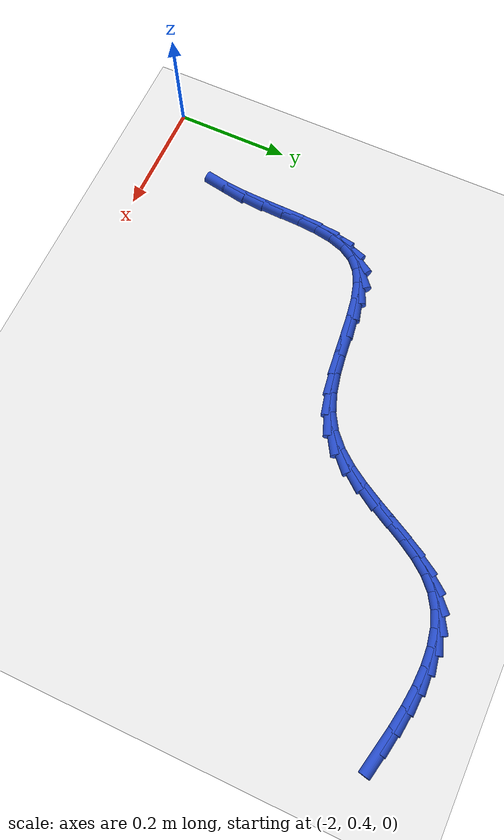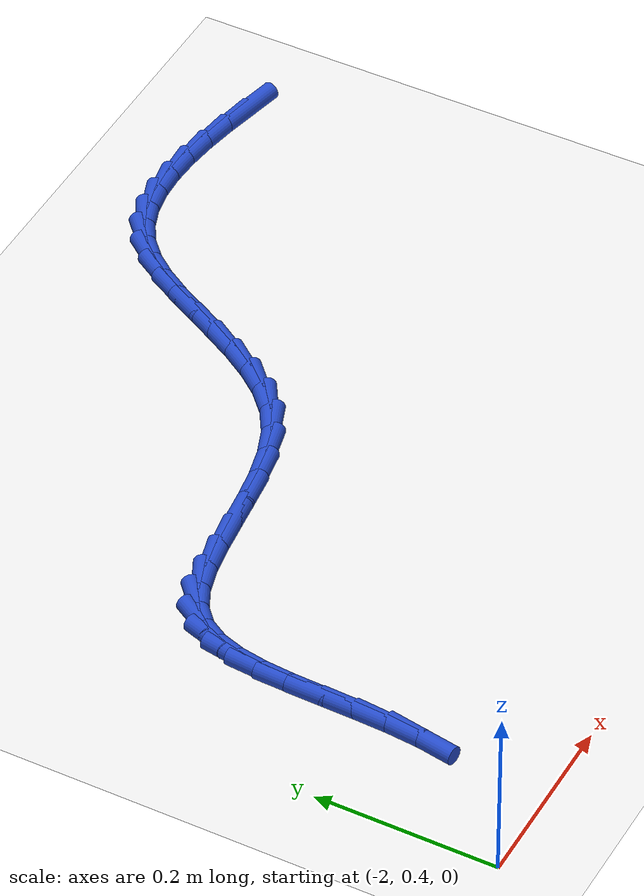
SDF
<sdf version="1.6">
 <world name="default">
  <model name="ground_plane">
   <static>1</static>
   <link name="link">
    <collision name="collision">
     <geometry><plane><normal>0 0 1</normal><size>100 100</size></plane></geometry>
     <surface><friction><ode><mu>100</mu><mu2>50</mu2></ode></friction></surface>
    </collision>
    <visual name="visual">
     <cast_shadows>0</cast_shadows>
     <geometry><plane><normal>0 0 1</normal><size>100 100</size></plane></geometry>
     <material>
      <script><uri>file://media/materials/scripts/gazebo.material</uri><name>Gazebo/WhiteGlow</name></script>
     </material>
    </visual>
   </link>
  </model>
  <model name="line">
   <link name="link_53">
    <pose>-1.1329414426015403 1.1470307469456456 0.01 0 1.57 -0.21202268224467472</pose>
    <collision name="collision">
     <geometry><cylinder><radius>0.01</radius><length>0.08</length></cylinder></geometry>
    </collision>
    <visual name="visual">
     <material>
      <script><name>Gazebo/Blue</name><uri>file://media/materials/scripts/gazebo.material</uri></script>
     </material>
     <geometry><cylinder><radius>0.01</radius><length>0.08</length></cylinder></geometry>
    </visual>
   </link>
   <link name="link_54">
    <pose>-1.1685116281906063 1.1546875115147306 0.01 0 1.57 -0.17346515563223877</pose>
    <collision name="collision">
     <geometry><cylinder><radius>0.01</radius><length>0.08</length></cylinder></geometry>
    </collision>
    <visual name="visual">
     <material>
      <script><name>Gazebo/Blue</name><uri>file://media/materials/scripts/gazebo.material</uri></script>
     </material>
     <geometry><cylinder><radius>0.01</radius><length>0.08</length></cylinder></geometry>
    </visual>
   </link>
   <link name="link_55">
    <pose>-1.2031429925957187 1.1607558345834916 0.01 0 1.57 -0.11797740032045509</pose>
    <collision name="collision">
     <geometry><cylinder><radius>0.01</radius><length>0.08</length></cylinder></geometry>
    </collision>
    <visual name="visual">
     <material>
      <script><name>Gazebo/Blue</name><uri>file://media/materials/scripts/gazebo.material</uri></script>
     </material>
     <geometry><cylinder><radius>0.01</radius><length>0.08</length></cylinder></geometry>
    </visual>
   </link>
   <link name="link_56">
    <pose>-1.236579084401334 1.1647189419128468 0.01 0 1.57 -0.04190585294978433</pose>
    <collision name="collision">
     <geometry><cylinder><radius>0.01</radius><length>0.08</length></cylinder></geometry>
    </collision>
    <visual name="visual">
     <material>
      <script><name>Gazebo/Blue</name><uri>file://media/materials/scripts/gazebo.material</uri></script>
     </material>
     <geometry><cylinder><radius>0.01</radius><length>0.08</length></cylinder></geometry>
    </visual>
   </link>
   <link name="link_57">
    <pose>-1.2685634521919078 1.1660600592637156 0.01 0 1.57 0.05930530623426875</pose>
    <collision name="collision">
     <geometry><cylinder><radius>0.01</radius><length>0.08</length></cylinder></geometry>
    </collision>
    <visual name="visual">
     <material>
      <script><name>Gazebo/Blue</name><uri>file://media/materials/scripts/gazebo.material</uri></script>
     </material>
     <geometry><cylinder><radius>0.01</radius><length>0.08</length></cylinder></geometry>
    </visual>
   </link>
   <link name="link_58">
    <pose>-1.2988396445518964 1.1642624123970167 0.01 0 1.57 0.190283022876163</pose>
    <collision name="collision">
     <geometry><cylinder><radius>0.01</radius><length>0.08</length></cylinder></geometry>
    </collision>
    <visual name="visual">
     <material>
      <script><name>Gazebo/Blue</name><uri>file://media/materials/scripts/gazebo.material</uri></script>
     </material>
     <geometry><cylinder><radius>0.01</radius><length>0.08</length></cylinder></geometry>
    </visual>
   </link>
   <link name="link_59">
    <pose>-1.3271512100657574 1.1588092270736696 0.01 0 1.57 0.3534362279731515</pose>
    <collision name="collision">
     <geometry><cylinder><radius>0.01</radius><length>0.08</length></cylinder></geometry>
    </collision>
    <visual name="visual">
     <material>
      <script><name>Gazebo/Blue</name><uri>file://media/materials/scripts/gazebo.material</uri></script>
     </material>
     <geometry><cylinder><radius>0.01</radius><length>0.08</length></cylinder></geometry>
    </visual>
   </link>
   <link name="link_60">
    <pose>-1.3532416973179457 1.1491837290545932 0.01 0 1.57 0.5449785562453563</pose>
    <collision name="collision">
     <geometry><cylinder><radius>0.01</radius><length>0.08</length></cylinder></geometry>
    </collision>
    <visual name="visual">
     <material>
      <script><name>Gazebo/Blue</name><uri>file://media/materials/scripts/gazebo.material</uri></script>
     </material>
     <geometry><cylinder><radius>0.01</radius><length>0.08</length></cylinder></geometry>
    </visual>
   </link>
   <link name="link_61">
    <pose>-1.3768546548929186 1.1348691441007066 0.01 0 1.57 0.74917982172499</pose>
    <collision name="collision">
     <geometry><cylinder><radius>0.01</radius><length>0.08</length></cylinder></geometry>
    </collision>
    <visual name="visual">
     <material>
      <script><name>Gazebo/Blue</name><uri>file://media/materials/scripts/gazebo.material</uri></script>
     </material>
     <geometry><cylinder><radius>0.01</radius><length>0.08</length></cylinder></geometry>
    </visual>
   </link>
   <link name="link_62">
    <pose>-1.3977726674062538 1.1154140193786934 0.01 0 1.57 0.9142011144767906</pose>
    <collision name="collision">
     <geometry><cylinder><radius>0.01</radius><length>0.08</length></cylinder></geometry>
    </collision>
    <visual name="visual">
     <material>
      <script><name>Gazebo/Blue</name><uri>file://media/materials/scripts/gazebo.material</uri></script>
     </material>
     <geometry><cylinder><radius>0.01</radius><length>0.08</length></cylinder></geometry>
    </visual>
   </link>
   <link name="link_63">
    <pose>-1.4163449036745022 1.0913150024493528 0.01 0 1.57 1.0175417219230745</pose>
    <collision name="collision">
     <geometry><cylinder><radius>0.01</radius><length>0.08</length></cylinder></geometry>
    </collision>
    <visual name="visual">
     <material>
      <script><name>Gazebo/Blue</name><uri>file://media/materials/scripts/gazebo.material</uri></script>
     </material>
     <geometry><cylinder><radius>0.01</radius><length>0.08</length></cylinder></geometry>
    </visual>
   </link>
   <link name="link_64">
    <pose>-1.4333479044139852 1.0637838887119042 0.01 0 1.57 1.0713889321470484</pose>
    <collision name="collision">
     <geometry><cylinder><radius>0.01</radius><length>0.08</length></cylinder></geometry>
    </collision>
    <visual name="visual">
     <material>
      <script><name>Gazebo/Blue</name><uri>file://media/materials/scripts/gazebo.material</uri></script>
     </material>
     <geometry><cylinder><radius>0.01</radius><length>0.08</length></cylinder></geometry>
    </visual>
   </link>
   <link name="link_65">
    <pose>-1.4495687081223272 1.0340500401524442 0.01 0 1.57 1.0846889842860583</pose>
    <collision name="collision">
     <geometry><cylinder><radius>0.01</radius><length>0.08</length></cylinder></geometry>
    </collision>
    <visual name="visual">
     <material>
      <script><name>Gazebo/Blue</name><uri>file://media/materials/scripts/gazebo.material</uri></script>
     </material>
     <geometry><cylinder><radius>0.01</radius><length>0.08</length></cylinder></geometry>
    </visual>
   </link>
   <link name="link_66">
    <pose>-1.4657943532971525 1.0033428187570688 0.01 0 1.57 1.061187544373523</pose>
    <collision name="collision">
     <geometry><cylinder><radius>0.01</radius><length>0.08</length></cylinder></geometry>
    </collision>
    <visual name="visual">
     <material>
      <script><name>Gazebo/Blue</name><uri>file://media/materials/scripts/gazebo.material</uri></script>
     </material>
     <geometry><cylinder><radius>0.01</radius><length>0.08</length></cylinder></geometry>
    </visual>
   </link>
   <link name="link_67">
    <pose>-1.4828118784360846 0.972891586511875 0.01 0 1.57 1.0000570758252663</pose>
    <collision name="collision">
     <geometry><cylinder><radius>0.01</radius><length>0.08</length></cylinder></geometry>
    </collision>
    <visual name="visual">
     <material>
      <script><name>Gazebo/Blue</name><uri>file://media/materials/scripts/gazebo.material</uri></script>
     </material>
     <geometry><cylinder><radius>0.01</radius><length>0.08</length></cylinder></geometry>
    </visual>
   </link>
   <link name="link_68">
    <pose>-1.501408322036748 0.9439257054029591 0.01 0 1.57 0.896951080619771</pose>
    <collision name="collision">
     <geometry><cylinder><radius>0.01</radius><length>0.08</length></cylinder></geometry>
    </collision>
    <visual name="visual">
     <material>
      <script><name>Gazebo/Blue</name><uri>file://media/materials/scripts/gazebo.material</uri></script>
     </material>
     <geometry><cylinder><radius>0.01</radius><length>0.08</length></cylinder></geometry>
    </visual>
   </link>
   <link name="link_69">
    <pose>-1.5223707225967666 0.9176745374164174 0.01 0 1.57 0.7464646765375791</pose>
    <collision name="collision">
     <geometry><cylinder><radius>0.01</radius><length>0.08</length></cylinder></geometry>
    </collision>
    <visual name="visual">
     <material>
      <script><name>Gazebo/Blue</name><uri>file://media/materials/scripts/gazebo.material</uri></script>
     </material>
     <geometry><cylinder><radius>0.01</radius><length>0.08</length></cylinder></geometry>
    </visual>
   </link>
   <link name="link_70">
    <pose>-1.5464861186137648 0.8953674445383472 0.01 0 1.57 0.5500451787679549</pose>
    <collision name="collision">
     <geometry><cylinder><radius>0.01</radius><length>0.08</length></cylinder></geometry>
    </collision>
    <visual name="visual">
     <material>
      <script><name>Gazebo/Blue</name><uri>file://media/materials/scripts/gazebo.material</uri></script>
     </material>
     <geometry><cylinder><radius>0.01</radius><length>0.08</length></cylinder></geometry>
    </visual>
   </link>
   <link name="link_71">
    <pose>-1.5745050126741056 0.8781871727781128 0.01 0 1.57 0.3627292873530652</pose>
    <collision name="collision">
     <geometry><cylinder><radius>0.01</radius><length>0.08</length></cylinder></geometry>
    </collision>
    <visual name="visual">
     <material>
      <script><name>Gazebo/Blue</name><uri>file://media/materials/scripts/gazebo.material</uri></script>
     </material>
     <geometry><cylinder><radius>0.01</radius><length>0.08</length></cylinder></geometry>
    </visual>
   </link>
   <link name="link_72">
    <pose>-1.6062540440503577 0.8661377158092909 0.01 0 1.57 0.23322818545304894</pose>
    <collision name="collision">
     <geometry><cylinder><radius>0.01</radius><length>0.08</length></cylinder></geometry>
    </collision>
    <visual name="visual">
     <material>
      <script><name>Gazebo/Blue</name><uri>file://media/materials/scripts/gazebo.material</uri></script>
     </material>
     <geometry><cylinder><radius>0.01</radius><length>0.08</length></cylinder></geometry>
    </visual>
   </link>
   <link name="link_73">
    <pose>-1.6405870484406124 0.8579818723488492 0.01 0 1.57 0.15435716667984334</pose>
    <collision name="collision">
     <geometry><cylinder><radius>0.01</radius><length>0.08</length></cylinder></geometry>
    </collision>
    <visual name="visual">
     <material>
      <script><name>Gazebo/Blue</name><uri>file://media/materials/scripts/gazebo.material</uri></script>
     </material>
     <geometry><cylinder><radius>0.01</radius><length>0.08</length></cylinder></geometry>
    </visual>
   </link>
   <link name="link_74">
    <pose>-1.6763115294034057 0.8524233261809425 0.01 0 1.57 0.1179673883621963</pose>
    <collision name="collision">
     <geometry><cylinder><radius>0.01</radius><length>0.08</length></cylinder></geometry>
    </collision>
    <visual name="visual">
     <material>
      <script><name>Gazebo/Blue</name><uri>file://media/materials/scripts/gazebo.material</uri></script>
     </material>
     <geometry><cylinder><radius>0.01</radius><length>0.08</length></cylinder></geometry>
    </visual>
   </link>
   <link name="link_75">
    <pose>-1.712234990497275 0.8481657610897262 0.01 0 1.57 0.12115878743704452</pose>
    <collision name="collision">
     <geometry><cylinder><radius>0.01</radius><length>0.08</length></cylinder></geometry>
    </collision>
    <visual name="visual">
     <material>
      <script><name>Gazebo/Blue</name><uri>file://media/materials/scripts/gazebo.material</uri></script>
     </material>
     <geometry><cylinder><radius>0.01</radius><length>0.08</length></cylinder></geometry>
    </visual>
   </link>
   <link name="link_76">
    <pose>-1.7471649352807557 0.8439128608593549 0.01 0 1.57 0.16773954479128225</pose>
    <collision name="collision">
     <geometry><cylinder><radius>0.01</radius><length>0.08</length></cylinder></geometry>
    </collision>
    <visual name="visual">
     <material>
      <script><name>Gazebo/Blue</name><uri>file://media/materials/scripts/gazebo.material</uri></script>
     </material>
     <geometry><cylinder><radius>0.01</radius><length>0.08</length></cylinder></geometry>
    </visual>
   </link>
   <link name="link_77">
    <pose>-1.7799088673123835 0.8383683092739836 0.01 0 1.57 0.27017078201847866</pose>
    <collision name="collision">
     <geometry><cylinder><radius>0.01</radius><length>0.08</length></cylinder></geometry>
    </collision>
    <visual name="visual">
     <material>
      <script><name>Gazebo/Blue</name><uri>file://media/materials/scripts/gazebo.material</uri></script>
     </material>
     <geometry><cylinder><radius>0.01</radius><length>0.08</length></cylinder></geometry>
    </visual>
   </link>
   <link name="link_78">
    <pose>-1.809274290150696 0.8302357901177679 0.01 0 1.57 0.45129853389072266</pose>
    <collision name="collision">
     <geometry><cylinder><radius>0.01</radius><length>0.08</length></cylinder></geometry>
    </collision>
    <visual name="visual">
     <material>
      <script><name>Gazebo/Blue</name><uri>file://media/materials/scripts/gazebo.material</uri></script>
     </material>
     <geometry><cylinder><radius>0.01</radius><length>0.08</length></cylinder></geometry>
    </visual>
   </link>
   <link name="link_79">
    <pose>-1.8340687073542288 0.8182189871748619 0.01 0 1.57 0.7318105183051753</pose>
    <collision name="collision">
     <geometry><cylinder><radius>0.01</radius><length>0.08</length></cylinder></geometry>
    </collision>
    <visual name="visual">
     <material>
      <script><name>Gazebo/Blue</name><uri>file://media/materials/scripts/gazebo.material</uri></script>
     </material>
     <geometry><cylinder><radius>0.01</radius><length>0.08</length></cylinder></geometry>
    </visual>
   </link>
   <link name="link_80">
    <pose>-1.853156486820106 0.8010746615508723 0.01 0 1.57 1.0336173166899083</pose>
    <collision name="collision">
     <geometry><cylinder><radius>0.01</radius><length>0.08</length></cylinder></geometry>
    </collision>
    <visual name="visual">
     <material>
      <script><name>Gazebo/Blue</name><uri>file://media/materials/scripts/gazebo.material</uri></script>
     </material>
     <geometry><cylinder><radius>0.01</radius><length>0.08</length></cylinder></geometry>
    </visual>
   </link>
   <link name="link_81">
    <pose>-1.8665332196596895 0.7786154610400781 0.01 0 1.57 1.2588916427071157</pose>
    <collision name="collision">
     <geometry><cylinder><radius>0.01</radius><length>0.08</length></cylinder></geometry>
    </collision>
    <visual name="visual">
     <material>
      <script><name>Gazebo/Blue</name><uri>file://media/materials/scripts/gazebo.material</uri></script>
     </material>
     <geometry><cylinder><radius>0.01</radius><length>0.08</length></cylinder></geometry>
    </visual>
   </link>
   <link name="link_82">
    <pose>-1.8752354971380483 0.7516257056862028 0.01 0 1.57 1.4060735724981681</pose>
    <collision name="collision">
     <geometry><cylinder><radius>0.01</radius><length>0.08</length></cylinder></geometry>
    </collision>
    <visual name="visual">
     <material>
      <script><name>Gazebo/Blue</name><uri>file://media/materials/scripts/gazebo.material</uri></script>
     </material>
     <geometry><cylinder><radius>0.01</radius><length>0.08</length></cylinder></geometry>
    </visual>
   </link>
   <link name="link_83">
    <pose>-1.8803386911587163 0.720925913481723 0.01 0 1.57 1.4941520170989595</pose>
    <collision name="collision">
     <geometry><cylinder><radius>0.01</radius><length>0.08</length></cylinder></geometry>
    </collision>
    <visual name="visual">
     <material>
      <script><name>Gazebo/Blue</name><uri>file://media/materials/scripts/gazebo.material</uri></script>
     </material>
     <geometry><cylinder><radius>0.01</radius><length>0.08</length></cylinder></geometry>
    </visual>
   </link>
   <link name="link_84">
    <pose>-1.8829181736252292 0.6873366024191143 0.01 0 1.57 1.5390852453384432</pose>
    <collision name="collision">
     <geometry><cylinder><radius>0.01</radius><length>0.08</length></cylinder></geometry>
    </collision>
    <visual name="visual">
     <material>
      <script><name>Gazebo/Blue</name><uri>file://media/materials/scripts/gazebo.material</uri></script>
     </material>
     <geometry><cylinder><radius>0.01</radius><length>0.08</length></cylinder></geometry>
    </visual>
   </link>
   <link name="link_85">
    <pose>-1.8840493164411214 0.6516782904908526 0.01 0 1.57 1.5502562488359992</pose>
    <collision name="collision">
     <geometry><cylinder><radius>0.01</radius><length>0.08</length></cylinder></geometry>
    </collision>
    <visual name="visual">
     <material>
      <script><name>Gazebo/Blue</name><uri>file://media/materials/scripts/gazebo.material</uri></script>
     </material>
     <geometry><cylinder><radius>0.01</radius><length>0.08</length></cylinder></geometry>
    </visual>
   </link>
   <link name="link_86">
    <pose>-1.8848074915099287 0.6147714956894146 0.01 0 1.57 1.5316951031851787</pose>
    <collision name="collision">
     <geometry><cylinder><radius>0.01</radius><length>0.08</length></cylinder></geometry>
    </collision>
    <visual name="visual">
     <material>
      <script><name>Gazebo/Blue</name><uri>file://media/materials/scripts/gazebo.material</uri></script>
     </material>
     <geometry><cylinder><radius>0.01</radius><length>0.08</length></cylinder></geometry>
    </visual>
   </link>
   <link name="link_87">
    <pose>-1.886268070735185 0.5774367360072756 0.01 0 1.57 1.4833597925983442</pose>
    <collision name="collision">
     <geometry><cylinder><radius>0.01</radius><length>0.08</length></cylinder></geometry>
    </collision>
    <visual name="visual">
     <material>
      <script><name>Gazebo/Blue</name><uri>file://media/materials/scripts/gazebo.material</uri></script>
     </material>
     <geometry><cylinder><radius>0.01</radius><length>0.08</length></cylinder></geometry>
    </visual>
   </link>
   <link name="link_88">
    <pose>-1.8895064260204266 0.5404945294369118 0.01 0 1.57 1.4019288035196342</pose>
    <collision name="collision">
     <geometry><cylinder><radius>0.01</radius><length>0.08</length></cylinder></geometry>
    </collision>
    <visual name="visual">
     <material>
      <script><name>Gazebo/Blue</name><uri>file://media/materials/scripts/gazebo.material</uri></script>
     </material>
     <geometry><cylinder><radius>0.01</radius><length>0.08</length></cylinder></geometry>
    </visual>
   </link>
  </model>
 </world>
</sdf>
